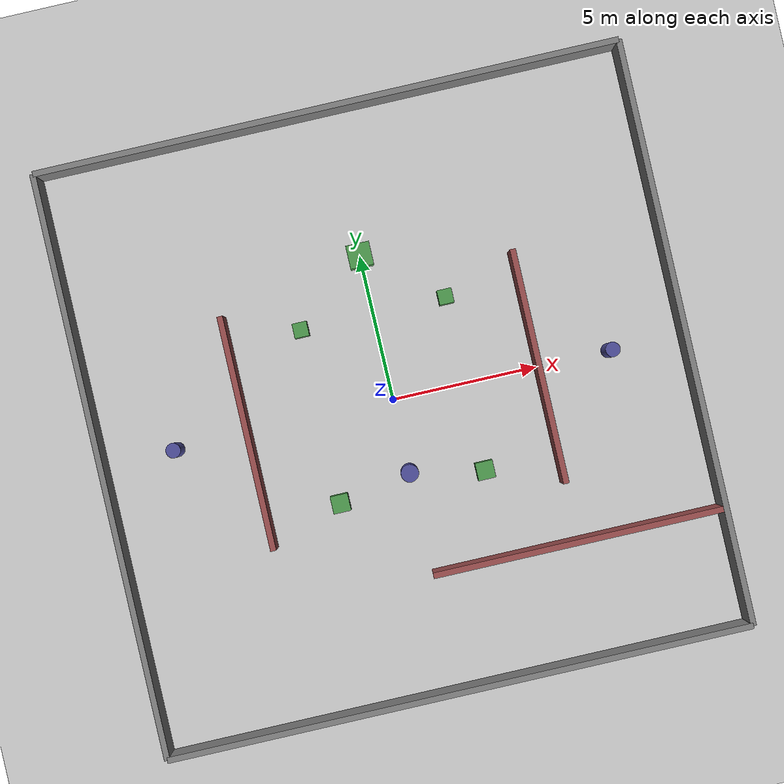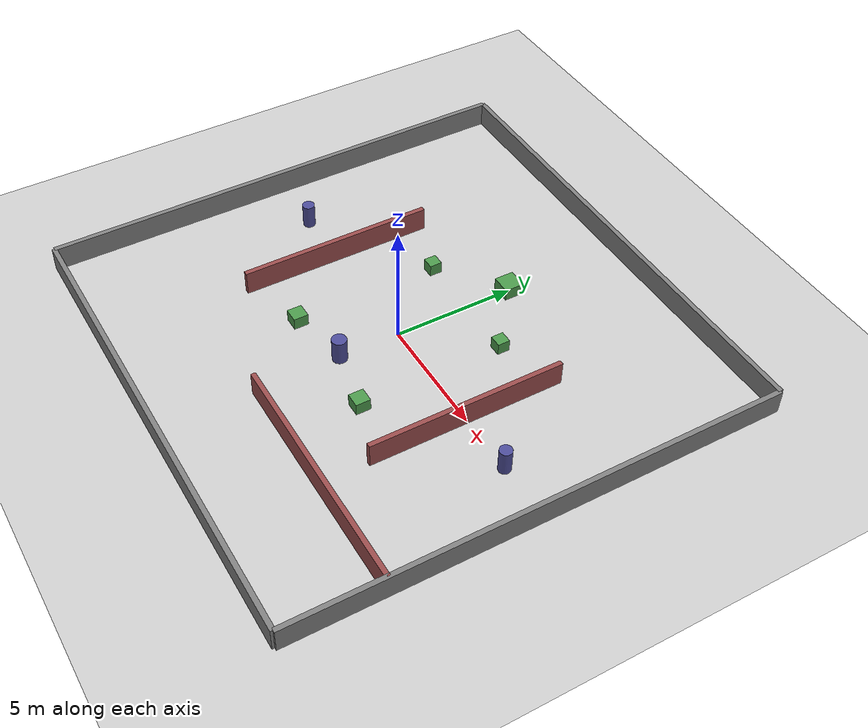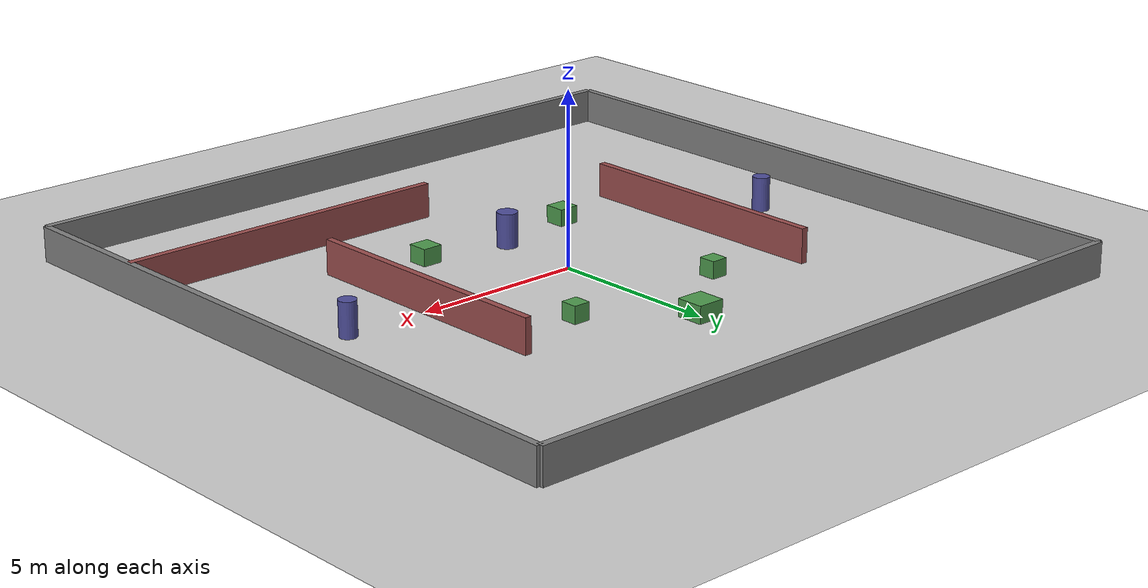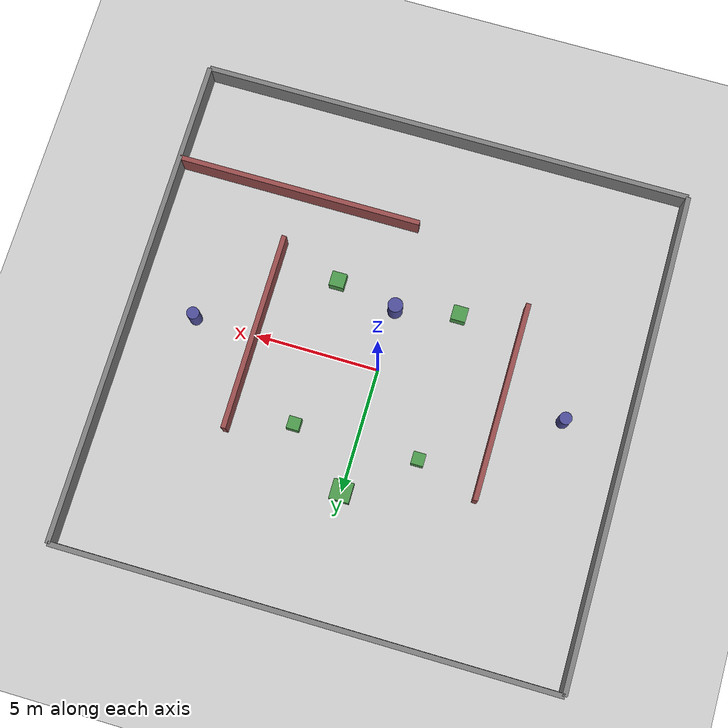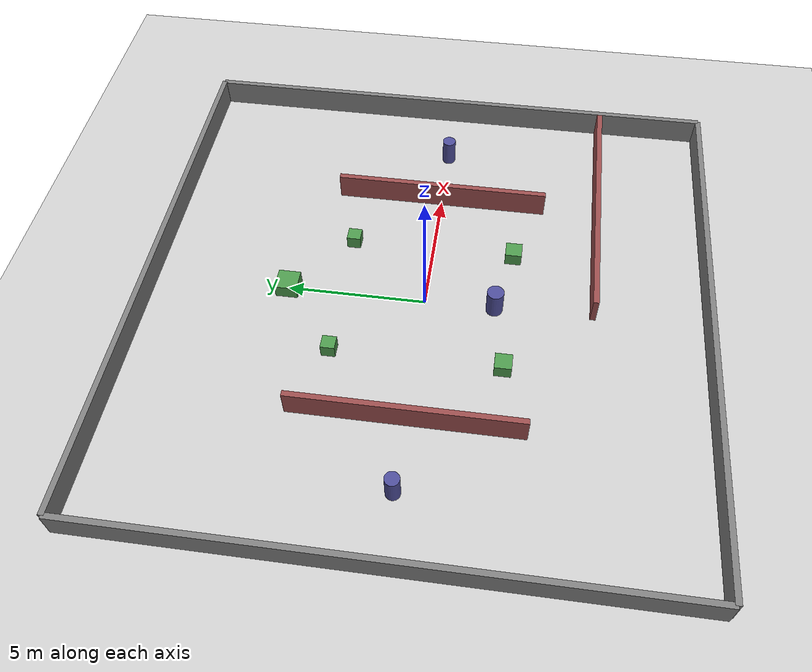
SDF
<?xml version="1.0"?>
<sdf version="1.4">
  <world name="navigation_env">
    <!-- 物理引擎配置 -->
    <physics type='ode'>
      <max_step_size>0.001</max_step_size>
      <real_time_factor>1</real_time_factor>
      <real_time_update_rate>1000</real_time_update_rate>
      <gravity>0 0 -9.8066</gravity>
    </physics>

    <!-- 场景配置 -->
    <scene>
      <ambient>0.4 0.4 0.4 1</ambient>
      <background>0.7 0.7 0.7 1</background>
      <shadows>true</shadows>
    </scene>

    <!-- 太阳光 -->
    <light type='directional' name='sun'>
      <cast_shadows>true</cast_shadows>
      <pose>0 0 10 0 0 0</pose>
      <diffuse>0.8 0.8 0.8 1</diffuse>
      <specular>0.2 0.2 0.2 1</specular>
      <attenuation>
        <range>1000</range>
        <constant>0.9</constant>
        <linear>0.01</linear>
        <quadratic>0.001</quadratic>
      </attenuation>
      <direction>-0.5 0.1 -0.9</direction>
    </light>

    <!-- 地面 -->
    <model name='ground_plane'>
      <static>true</static>
      <link name='link'>
        <collision name='collision'>
          <geometry>
            <plane>
              <normal>0 0 1</normal>
              <size>100 100</size>
            </plane>
          </geometry>
          <surface>
            <friction>
              <ode>
                <mu>100</mu>
                <mu2>50</mu2>
              </ode>
            </friction>
          </surface>
        </collision>
        <visual name='visual'>
          <cast_shadows>false</cast_shadows>
          <geometry>
            <plane>
              <normal>0 0 1</normal>
              <size>100 100</size>
            </plane>
          </geometry>
          <material>
            <script>
              <uri>file://media/materials/scripts/gazebo.material</uri>
              <name>Gazebo/Grey</name>
            </script>
          </material>
        </visual>
      </link>
    </model>

    <!-- 外墙 - 北侧 -->
    <model name='wall_north'>
      <static>true</static>
      <pose>0 10 0.5 0 0 0</pose>
      <link name='link'>
        <collision name='collision'>
          <geometry>
            <box>
              <size>20 0.2 1</size>
            </box>
          </geometry>
        </collision>
        <visual name='visual'>
          <cast_shadows>true</cast_shadows>
          <geometry>
            <box>
              <size>20 0.2 1</size>
            </box>
          </geometry>
          <material>
            <ambient>0.5 0.5 0.5 1</ambient>
            <diffuse>0.5 0.5 0.5 1</diffuse>
          </material>
        </visual>
      </link>
    </model>

    <!-- 外墙 - 南侧 -->
    <model name='wall_south'>
      <static>true</static>
      <pose>0 -10 0.5 0 0 0</pose>
      <link name='link'>
        <collision name='collision'>
          <geometry>
            <box>
              <size>20 0.2 1</size>
            </box>
          </geometry>
        </collision>
        <visual name='visual'>
          <cast_shadows>true</cast_shadows>
          <geometry>
            <box>
              <size>20 0.2 1</size>
            </box>
          </geometry>
          <material>
            <ambient>0.5 0.5 0.5 1</ambient>
            <diffuse>0.5 0.5 0.5 1</diffuse>
          </material>
        </visual>
      </link>
    </model>

    <!-- 外墙 - 东侧 -->
    <model name='wall_east'>
      <static>true</static>
      <pose>10 0 0.5 0 0 0</pose>
      <link name='link'>
        <collision name='collision'>
          <geometry>
            <box>
              <size>0.2 20 1</size>
            </box>
          </geometry>
        </collision>
        <visual name='visual'>
          <cast_shadows>true</cast_shadows>
          <geometry>
            <box>
              <size>0.2 20 1</size>
            </box>
          </geometry>
          <material>
            <ambient>0.5 0.5 0.5 1</ambient>
            <diffuse>0.5 0.5 0.5 1</diffuse>
          </material>
        </visual>
      </link>
    </model>

    <!-- 外墙 - 西侧 -->
    <model name='wall_west'>
      <static>true</static>
      <pose>-10 0 0.5 0 0 0</pose>
      <link name='link'>
        <collision name='collision'>
          <geometry>
            <box>
              <size>0.2 20 1</size>
            </box>
          </geometry>
        </collision>
        <visual name='visual'>
          <cast_shadows>true</cast_shadows>
          <geometry>
            <box>
              <size>0.2 20 1</size>
            </box>
          </geometry>
          <material>
            <ambient>0.5 0.5 0.5 1</ambient>
            <diffuse>0.5 0.5 0.5 1</diffuse>
          </material>
        </visual>
      </link>
    </model>

    <!-- 内墙1 - 左侧垂直墙 -->
    <model name='inner_wall_1'>
      <static>true</static>
      <pose>-5 0 0.5 0 0 0</pose>
      <link name='link'>
        <collision name='collision'>
          <geometry>
            <box>
              <size>0.2 8 1</size>
            </box>
          </geometry>
        </collision>
        <visual name='visual'>
          <cast_shadows>true</cast_shadows>
          <geometry>
            <box>
              <size>0.2 8 1</size>
            </box>
          </geometry>
          <material>
            <ambient>0.6 0.3 0.3 1</ambient>
            <diffuse>0.6 0.3 0.3 1</diffuse>
          </material>
        </visual>
      </link>
    </model>

    <!-- 内墙2 - 右侧垂直墙 -->
    <model name='inner_wall_2'>
      <static>true</static>
      <pose>5 0 0.5 0 0 0</pose>
      <link name='link'>
        <collision name='collision'>
          <geometry>
            <box>
              <size>0.2 8 1</size>
            </box>
          </geometry>
        </collision>
        <visual name='visual'>
          <cast_shadows>true</cast_shadows>
          <geometry>
            <box>
              <size>0.2 8 1</size>
            </box>
          </geometry>
          <material>
            <ambient>0.6 0.3 0.3 1</ambient>
            <diffuse>0.6 0.3 0.3 1</diffuse>
          </material>
        </visual>
      </link>
    </model>

    <!-- 内墙3 - 右侧水平墙 -->
    <model name='inner_wall_3'>
      <static>true</static>
      <pose>5 -6 0.5 0 0 0</pose>
      <link name='link'>
        <collision name='collision'>
          <geometry>
            <box>
              <size>10 0.2 1</size>
            </box>
          </geometry>
        </collision>
        <visual name='visual'>
          <cast_shadows>true</cast_shadows>
          <geometry>
            <box>
              <size>10 0.2 1</size>
            </box>
          </geometry>
          <material>
            <ambient>0.6 0.3 0.3 1</ambient>
            <diffuse>0.6 0.3 0.3 1</diffuse>
          </material>
        </visual>
      </link>
    </model>

    <!-- 障碍物1 - 箱子 -->
    <model name='box_obstacle_1'>
      <static>true</static>
      <pose>-2.5 3 0.25 0 0 0</pose>
      <link name='link'>
        <collision name='collision'>
          <geometry>
            <box>
              <size>0.5 0.5 0.5</size>
            </box>
          </geometry>
        </collision>
        <visual name='visual'>
          <cast_shadows>true</cast_shadows>
          <geometry>
            <box>
              <size>0.5 0.5 0.5</size>
            </box>
          </geometry>
          <material>
            <ambient>0.3 0.6 0.3 1</ambient>
            <diffuse>0.3 0.6 0.3 1</diffuse>
          </material>
        </visual>
      </link>
    </model>

    <!-- 障碍物2 - 箱子 -->
    <model name='box_obstacle_2'>
      <static>true</static>
      <pose>2.5 3 0.25 0 0 0</pose>
      <link name='link'>
        <collision name='collision'>
          <geometry>
            <box>
              <size>0.5 0.5 0.5</size>
            </box>
          </geometry>
        </collision>
        <visual name='visual'>
          <cast_shadows>true</cast_shadows>
          <geometry>
            <box>
              <size>0.5 0.5 0.5</size>
            </box>
          </geometry>
          <material>
            <ambient>0.3 0.6 0.3 1</ambient>
            <diffuse>0.3 0.6 0.3 1</diffuse>
          </material>
        </visual>
      </link>
    </model>

    <!-- 障碍物3 - 箱子 -->
    <model name='box_obstacle_3'>
      <static>true</static>
      <pose>0 5 0.25 0 0 0</pose>
      <link name='link'>
        <collision name='collision'>
          <geometry>
            <box>
              <size>0.8 0.8 0.5</size>
            </box>
          </geometry>
        </collision>
        <visual name='visual'>
          <cast_shadows>true</cast_shadows>
          <geometry>
            <box>
              <size>0.8 0.8 0.5</size>
            </box>
          </geometry>
          <material>
            <ambient>0.3 0.6 0.3 1</ambient>
            <diffuse>0.3 0.6 0.3 1</diffuse>
          </material>
        </visual>
      </link>
    </model>

    <!-- 障碍物4 - 箱子 -->
    <model name='box_obstacle_4'>
      <static>true</static>
      <pose>-2.5 -3 0.25 0 0 0</pose>
      <link name='link'>
        <collision name='collision'>
          <geometry>
            <box>
              <size>0.6 0.6 0.5</size>
            </box>
          </geometry>
        </collision>
        <visual name='visual'>
          <cast_shadows>true</cast_shadows>
          <geometry>
            <box>
              <size>0.6 0.6 0.5</size>
            </box>
          </geometry>
          <material>
            <ambient>0.3 0.6 0.3 1</ambient>
            <diffuse>0.3 0.6 0.3 1</diffuse>
          </material>
        </visual>
      </link>
    </model>

    <!-- 障碍物5 - 箱子 -->
    <model name='box_obstacle_5'>
      <static>true</static>
      <pose>2.5 -3 0.25 0 0 0</pose>
      <link name='link'>
        <collision name='collision'>
          <geometry>
            <box>
              <size>0.6 0.6 0.5</size>
            </box>
          </geometry>
        </collision>
        <visual name='visual'>
          <cast_shadows>true</cast_shadows>
          <geometry>
            <box>
              <size>0.6 0.6 0.5</size>
            </box>
          </geometry>
          <material>
            <ambient>0.3 0.6 0.3 1</ambient>
            <diffuse>0.3 0.6 0.3 1</diffuse>
          </material>
        </visual>
      </link>
    </model>

    <!-- 障碍物6 - 圆柱 -->
    <model name='cylinder_obstacle_1'>
      <static>true</static>
      <pose>0 -2.5 0.5 0 0 0</pose>
      <link name='link'>
        <collision name='collision'>
          <geometry>
            <cylinder>
              <radius>0.3</radius>
              <length>1</length>
            </cylinder>
          </geometry>
        </collision>
        <visual name='visual'>
          <cast_shadows>true</cast_shadows>
          <geometry>
            <cylinder>
              <radius>0.3</radius>
              <length>1</length>
            </cylinder>
          </geometry>
          <material>
            <ambient>0.3 0.3 0.6 1</ambient>
            <diffuse>0.3 0.3 0.6 1</diffuse>
          </material>
        </visual>
      </link>
    </model>

    <!-- 障碍物7 - 圆柱 -->
    <model name='cylinder_obstacle_2'>
      <static>true</static>
      <pose>7.5 0 0.5 0 0 0</pose>
      <link name='link'>
        <collision name='collision'>
          <geometry>
            <cylinder>
              <radius>0.25</radius>
              <length>1</length>
            </cylinder>
          </geometry>
        </collision>
        <visual name='visual'>
          <cast_shadows>true</cast_shadows>
          <geometry>
            <cylinder>
              <radius>0.25</radius>
              <length>1</length>
            </cylinder>
          </geometry>
          <material>
            <ambient>0.3 0.3 0.6 1</ambient>
            <diffuse>0.3 0.3 0.6 1</diffuse>
          </material>
        </visual>
      </link>
    </model>

    <!-- 障碍物8 - 圆柱 -->
    <model name='cylinder_obstacle_3'>
      <static>true</static>
      <pose>-7.5 0 0.5 0 0 0</pose>
      <link name='link'>
        <collision name='collision'>
          <geometry>
            <cylinder>
              <radius>0.25</radius>
              <length>1</length>
            </cylinder>
          </geometry>
        </collision>
        <visual name='visual'>
          <cast_shadows>true</cast_shadows>
          <geometry>
            <cylinder>
              <radius>0.25</radius>
              <length>1</length>
            </cylinder>
          </geometry>
          <material>
            <ambient>0.3 0.3 0.6 1</ambient>
            <diffuse>0.3 0.3 0.6 1</diffuse>
          </material>
        </visual>
      </link>
    </model>

  </world>
</sdf>
